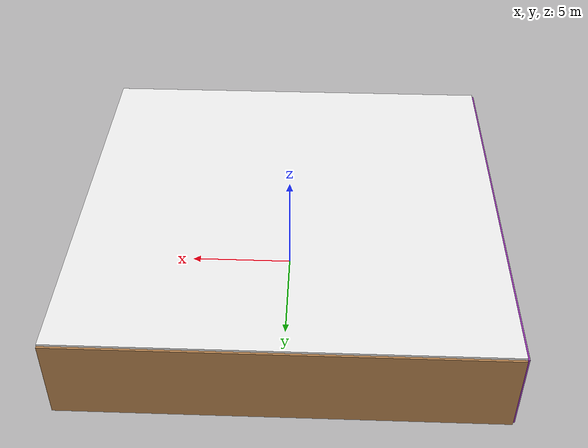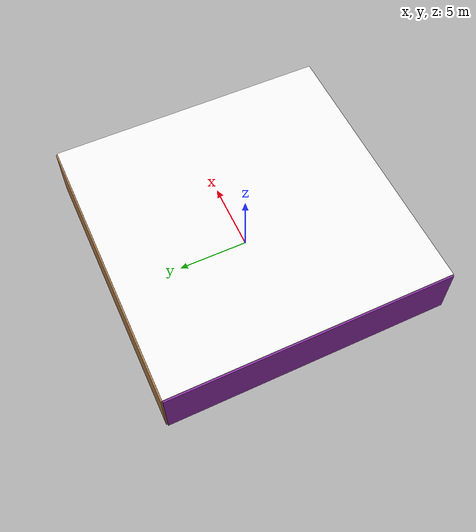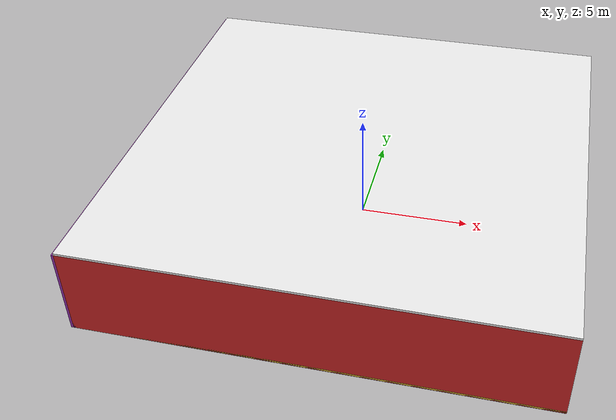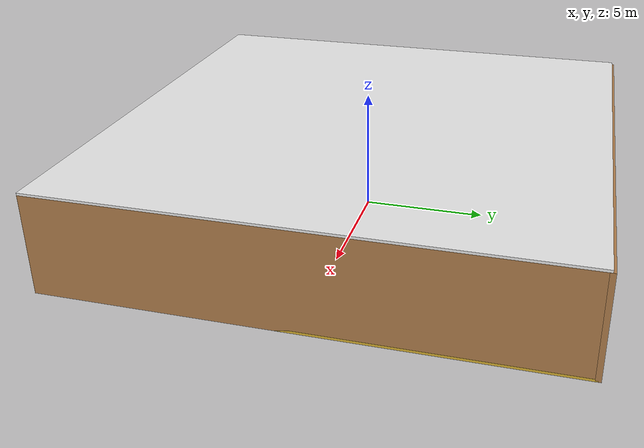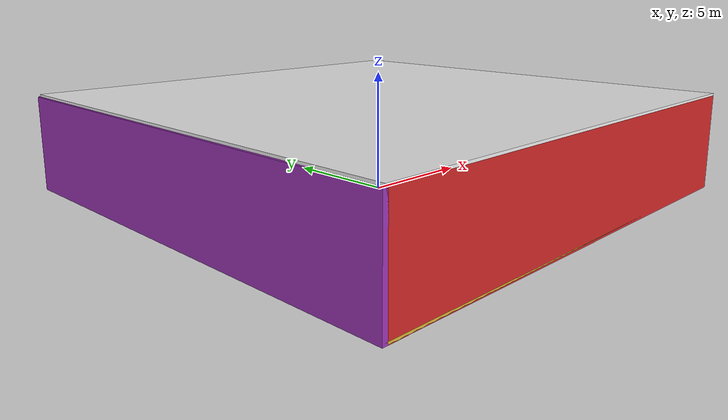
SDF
<sdf version="1.4">
 <world name="default">
  <physics type="ode">
   <max_step_size>0.001</max_step_size>
   <real_time_factor>1</real_time_factor>
   <real_time_update_rate>1000</real_time_update_rate>
   <gravity>0 0 -9.8</gravity>
  </physics>
  <scene><ambient>0.4 0.4 0.4 1</ambient><background>0.7 0.7 0.7 1</background><shadows>1</shadows></scene>
  <model name="Surrounding">
   <static>1</static>
   <link name="Ceiling">
    <collision name="Ceiling_Collision"><geometry><box><size>20 20 0.1</size></box></geometry></collision>
    <visual name="Ceiling_Visual">
     <geometry><box><size>20 20 0.1</size></box></geometry>
     <material>
      <script><uri>file://media/materials/scripts/gazebo.material</uri><name>Gazebo/WhiteGlow</name></script>
     </material>
    </visual>
    <pose>0 0 4.05 0 0 0</pose>
   </link>
   <link name="Wall_South">
    <collision name="Wall_South_Collision">
     <geometry><box><size>20 0 4</size></box></geometry>
     <pose>0 0 2 0 -0 0</pose>
    </collision>
    <visual name="Wall_South_Visual">
     <pose>0 0 2 0 -0 0</pose>
     <geometry><box><size>20 0 4</size></box></geometry>
     <material>
      <script><uri>file://media/materials/scripts/gazebo.material</uri><name>Gazebo/RedBright</name></script>
     </material>
    </visual>
    <velocity_decay><linear>0</linear><angular>0</angular></velocity_decay>
    <pose>0 -10 0 0 -0 0</pose>
   </link>
   <link name="Wall_East">
    <collision name="Wall_21_Collision">
     <geometry><box><size>20 0 4</size></box></geometry>
     <pose>0 0 2 0 -0 0</pose>
    </collision>
    <visual name="Wall_21_Visual">
     <pose>0 0 2 0 -0 0</pose>
     <geometry><box><size>20 0 4</size></box></geometry>
     <material>
      <script><uri>file://media/materials/scripts/gazebo.material</uri><name>Gazebo/WoodFloor</name></script>
     </material>
    </visual>
    <velocity_decay><linear>0</linear><angular>0</angular></velocity_decay>
    <pose>10 0 0 0 -0 1.5708</pose>
   </link>
   <link name="Wall_North">
    <collision name="Wall_22_Collision">
     <geometry><box><size>20 0.2 4</size></box></geometry>
     <pose>0 0 2 0 -0 0</pose>
    </collision>
    <visual name="Wall_22_Visual">
     <pose>0 0 2 0 -0 0</pose>
     <geometry><box><size>20 0.2 4</size></box></geometry>
     <material>
      <script><uri>file://media/materials/scripts/gazebo.material</uri><name>Gazebo/Wood</name></script>
     </material>
    </visual>
    <velocity_decay><linear>0</linear><angular>0</angular></velocity_decay>
    <pose>0 10 0 0 -0 0</pose>
   </link>
   <link name="Wall_West">
    <collision name="Wall_23_Collision">
     <geometry><box><size>20 0.2 4</size></box></geometry>
     <pose>0 0 2 0 -0 0</pose>
    </collision>
    <visual name="Wall_23_Visual">
     <pose>0 0 2 0 -0 0</pose>
     <geometry><box><size>20 0.2 4</size></box></geometry>
     <material>
      <script><uri>file://media/materials/scripts/gazebo.material</uri><name>Gazebo/Purple</name></script>
     </material>
    </visual>
    <velocity_decay><linear>0</linear><angular>0</angular></velocity_decay>
    <pose>-10 0 0 0 0 -1.5708</pose>
   </link>
   <link name="Ground_link">
    <collision name="collision">
     <pose>0 0 .05 0 -0 0</pose>
     <geometry><box><size>20 20 0.1</size></box></geometry>
    </collision>
    <visual name="visual">
     <pose>0 0 .05 0 -0 0</pose>
     <geometry><box><size>20 20 0.1</size></box></geometry>
     <material>
      <script><uri>file://media/materials/scripts/gazebo.material</uri><name>Gazebo/Gold</name></script>
     </material>
    </visual>
   </link>
   <static>1</static>
  </model>
  <spherical_coordinates>
   <surface_model>EARTH_WGS84</surface_model>
   <latitude_deg>0</latitude_deg>
   <longitude_deg>0</longitude_deg>
   <elevation>0</elevation>
   <heading_deg>0</heading_deg>
  </spherical_coordinates>
  <light name="lightball_0" type="diffuse">
   <diffuse>0.8 0.8 0.8 1</diffuse>
   <specular>0.2 0.2 0.2 1</specular>
   <attenuation>
    <range>100</range>
    <constant>0.7</constant>
    <linear>0.01</linear>
    <quadratic>0.001</quadratic>
   </attenuation>
   <direction>-0.5 0.1 -0.9</direction>
   <pose>2.385543087 7.86789739772 0.645673665721 0 0 0</pose>
  </light>
  <light name="lightball_1" type="diffuse">
   <diffuse>0.8 0.8 0.8 1</diffuse>
   <specular>0.2 0.2 0.2 1</specular>
   <attenuation>
    <range>100</range>
    <constant>0.7</constant>
    <linear>0.01</linear>
    <quadratic>0.001</quadratic>
   </attenuation>
   <direction>-0.5 0.1 -0.9</direction>
   <pose>-3.39081557668 8.26905088341 3.53810269165 0 0 0</pose>
  </light>
  <light name="lightball_2" type="diffuse">
   <diffuse>0.8 0.8 0.8 1</diffuse>
   <specular>0.2 0.2 0.2 1</specular>
   <attenuation>
    <range>100</range>
    <constant>0.7</constant>
    <linear>0.01</linear>
    <quadratic>0.001</quadratic>
   </attenuation>
   <direction>-0.5 0.1 -0.9</direction>
   <pose>-8.49416952925 7.76934477361 3.52574948444 0 0 0</pose>
  </light>
  <light name="lightball_3" type="diffuse">
   <diffuse>0.8 0.8 0.8 1</diffuse>
   <specular>0.2 0.2 0.2 1</specular>
   <attenuation>
    <range>100</range>
    <constant>0.7</constant>
    <linear>0.01</linear>
    <quadratic>0.001</quadratic>
   </attenuation>
   <direction>-0.5 0.1 -0.9</direction>
   <pose>-2.9047486945 1.20659843778 3.53616807955 0 0 0</pose>
  </light>
  <light name="lightball_4" type="diffuse">
   <diffuse>0.8 0.8 0.8 1</diffuse>
   <specular>0.2 0.2 0.2 1</specular>
   <attenuation>
    <range>100</range>
    <constant>0.7</constant>
    <linear>0.01</linear>
    <quadratic>0.001</quadratic>
   </attenuation>
   <direction>-0.5 0.1 -0.9</direction>
   <pose>-0.262882688414 -7.2560191068 0.785845498837 0 0 0</pose>
  </light>
  <include><uri>model://cabinet</uri><pose>-7.25869066593 2.23109547707 0 0 0 2.64621460416</pose></include>
  <include>
   <uri>model://construction_cone</uri>
   <pose>-7.77781134823 6.98579494155 0 0 0 3.0010931027</pose>
  </include>
  <include><uri>model://cabinet</uri><pose>-1.96238717872 -7.51182404826 0 0 0 2.25241851688</pose></include>
  <include>
   <uri>model://construction_cone</uri>
   <pose>1.32557808273 -0.93775793722 0 0 0 1.69789772849</pose>
  </include>
  <include>
   <uri>model://textured_shapes</uri>
   <pose>0.967719377523 3.74480756789 0 0 0 2.15514302866</pose>
  </include>
 </world>
</sdf>

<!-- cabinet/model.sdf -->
<sdf version="1.5">
  <model name="cabinet">
    <static>true</static>
    <link name="cabinet_bottom_plate">
      <inertial>
        <pose>0 0 -1 0 0 0</pose>
        <inertia>
          <ixx>2.050000</ixx>
          <ixy>0</ixy>
          <ixz>0</ixz>
          <iyy>2.050000</iyy>
          <iyz>0</iyz>
          <izz>2.050000</izz>
        </inertia>
        <mass>25.000000</mass>
      </inertial>
      <collision name="cabinet_bottom_plate_geom">
        <pose>0 0 0.010000 0 0 0</pose>
        <geometry>
          <box>
            <size>0.450000 0.450000 0.020000</size>
          </box>
        </geometry>
      </collision>
      <visual name="cabinet_bottom_plate_geom_visual">
        <pose>0 0 0.010000 0 0 0</pose>
        <geometry>
          <box>
            <size>0.450000 0.450000 0.020000</size>
          </box>
        </geometry>
        <material>
          <script>
            <uri>model://media/materials/scripts/gazebo.material</uri>
            <name>Gazebo/Wood</name>
          </script>
        </material>
      </visual>
      <collision name="cabinet_bottom_plate_geom_cabinet_back_plate">
        <pose>0.235000 0 0.510000 0 0 0</pose>
        <geometry>
          <box>
            <size>0.020000 0.450000 1.020000</size>
          </box>
        </geometry>
      </collision>
      <visual name="cabinet_bottom_plate_geom_cabinet_back_plate_visual">
        <pose>0.235000 0 0.510000 0 0 0</pose>
        <geometry>
          <box>
            <size>0.020000 0.450000 1.020000</size>
          </box>
        </geometry>
        <material>
          <script>
            <uri>model://media/materials/scripts/gazebo.material</uri>
            <name>Gazebo/Wood</name>
          </script>
        </material>
      </visual>
      <collision name="cabinet_bottom_plate_geom_cabinet_left_plate">
        <pose>0 0.235000 0.510000 0 0 0</pose>
        <geometry>
          <box>
            <size>0.450000 0.020000 1.020000</size>
          </box>
        </geometry>
      </collision>
      <visual name="cabinet_bottom_plate_geom_cabinet_left_plate_visual">
        <pose>0 0.235000 0.510000 0 0 0</pose>
        <geometry>
          <box>
            <size>0.450000 0.020000 1.020000</size>
          </box>
        </geometry>
        <material>
          <script>
            <uri>model://media/materials/scripts/gazebo.material</uri>
            <name>Gazebo/Wood</name>
          </script>
        </material>
      </visual>
      <collision name="cabinet_bottom_plate_geom_cabinet_middle_plate">
        <pose>0 0 0.510000 0 0 0</pose>
        <geometry>
          <box>
            <size>0.450000 0.450000 0.020000</size>
          </box>
        </geometry>
      </collision>
      <visual name="cabinet_bottom_plate_geom_cabinet_middle_plate_visual">
        <pose>0 0 0.510000 0 0 0</pose>
        <geometry>
          <box>
            <size>0.450000 0.450000 0.020000</size>
          </box>
        </geometry>
        <material>
          <script>
            <uri>model://media/materials/scripts/gazebo.material</uri>
            <name>Gazebo/Wood</name>
          </script>
        </material>
      </visual>
      <collision name="cabinet_bottom_plate_geom_cabinet_right_plate">
        <pose>0 -0.235000 0.510000 0 0 0</pose>
        <geometry>
          <box>
            <size>0.450000 0.020000 1.020000</size>
          </box>
        </geometry>
      </collision>
      <visual name="cabinet_bottom_plate_geom_cabinet_right_plate_visual">
        <pose>0 -0.235000 0.510000 0 0 0</pose>
        <geometry>
          <box>
            <size>0.450000 0.020000 1.020000</size>
          </box>
        </geometry>
        <material>
          <script>
            <uri>model://media/materials/scripts/gazebo.material</uri>
            <name>Gazebo/Wood</name>
          </script>
        </material>
      </visual>
      <collision name="cabinet_bottom_plate_geom_cabinet_top_plate">
        <pose>0 0 1.010000 0 0 0</pose>
        <geometry>
          <box>
            <size>0.450000 0.450000 0.020000</size>
          </box>
        </geometry>
      </collision>
      <visual name="cabinet_bottom_plate_geom_cabinet_top_plate_visual">
        <pose>0 0 1.010000 0 0 0</pose>
        <geometry>
          <box>
            <size>0.450000 0.450000 0.020000</size>
          </box>
        </geometry>
        <material>
          <script>
            <uri>model://media/materials/scripts/gazebo.material</uri>
            <name>Gazebo/Wood</name>
          </script>
        </material>
      </visual>
    </link>
  </model>
</sdf>

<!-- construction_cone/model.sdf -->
<sdf version="1.5">
  <model name="Construction Cone">
    <link name="link">
      <collision name="collision">
        <geometry>
          <mesh>
            <scale>10 10 10</scale>
            <uri>file://isr-testbed/construction_cone/meshes/construction_cone.dae</uri>
          </mesh>
        </geometry>
      </collision>
      <visual name="visual">
        <geometry>
          <mesh>
            <scale>10 10 10</scale>
            <uri>file://isr-testbed/construction_cone/meshes/construction_cone.dae</uri>
          </mesh>
        </geometry>
      </visual>
    </link>
  </model>
</sdf>

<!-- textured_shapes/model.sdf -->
<sdf version="1.6">
  <model name="textured_shapes">
    <pose>0 0 0.5 0 0 0</pose>
    <link name="box">
      <pose>0 -1.5 0 0 0 0</pose>
      <collision name="collision">
        <geometry>
          <box>
            <size>1 1 1</size>
          </box>
        </geometry>
      </collision>
      <visual name="visual">
        <geometry>
          <box>
            <size>1 1 1</size>
          </box>
        </geometry>
        <material>
          <script>
            <uri>model://../model_source/models/textured_shapes/materials/scripts</uri>
            <uri>model://../model_source/models/textured_shapes/materials/textures</uri>
            <name>TexturedShape/Squares</name>
          </script>
        </material>
      </visual>
    </link>
    <link name="sphere">
      <collision name="collision">
        <geometry>
          <sphere>
            <radius>0.5</radius>
          </sphere>
        </geometry>
      </collision>
      <visual name="visual">
        <geometry>
          <sphere>
            <radius>0.5</radius>
          </sphere>
        </geometry>
        <material>
          <script>
            <uri>model://../model_source/models/textured_shapes/materials/scripts</uri>
            <uri>model://../model_source/models/textured_shapes/materials/textures</uri>
            <name>TexturedShape/Squares</name>
          </script>
        </material>
      </visual>
    </link>
    <link name="cylinder">
      <pose>0 1.5 0 0 0 0</pose>
      <collision name="collision">
        <geometry>
          <cylinder>
            <radius>0.5</radius>
            <length>1</length>
          </cylinder>
        </geometry>
      </collision>
      <visual name="visual">
        <geometry>
          <cylinder>
            <radius>0.5</radius>
            <length>1</length>
          </cylinder>
        </geometry>
        <material>
          <script>
            <uri>model://../model_source/models/textured_shapes/materials/scripts</uri>
            <uri>model://../model_source/models/textured_shapes/materials/textures</uri>
            <name>TexturedShape/Squares</name>
          </script>
        </material>
      </visual>
    </link>
  </model>
</sdf>
